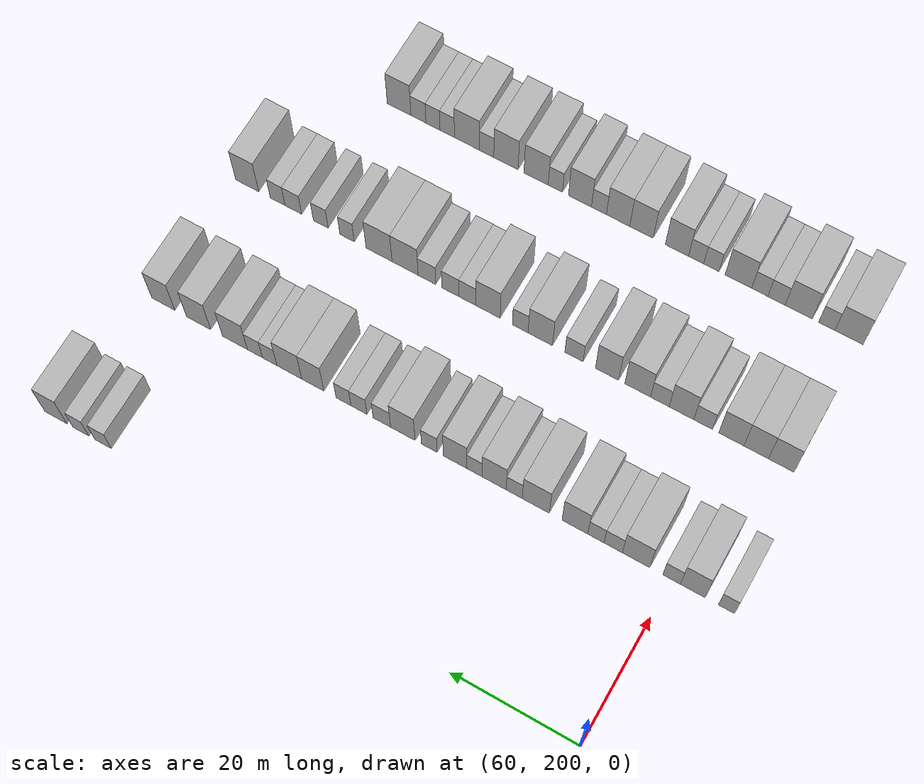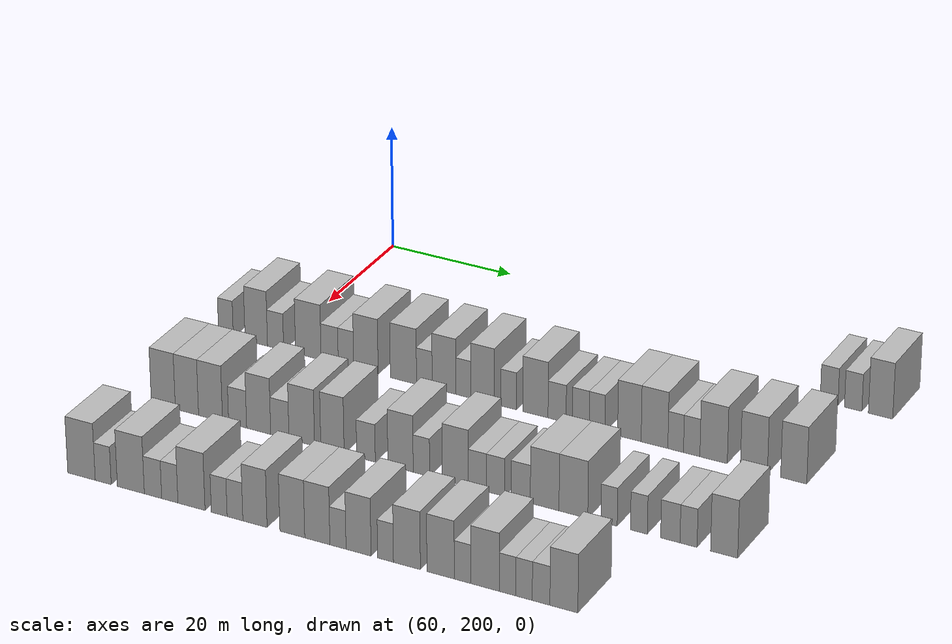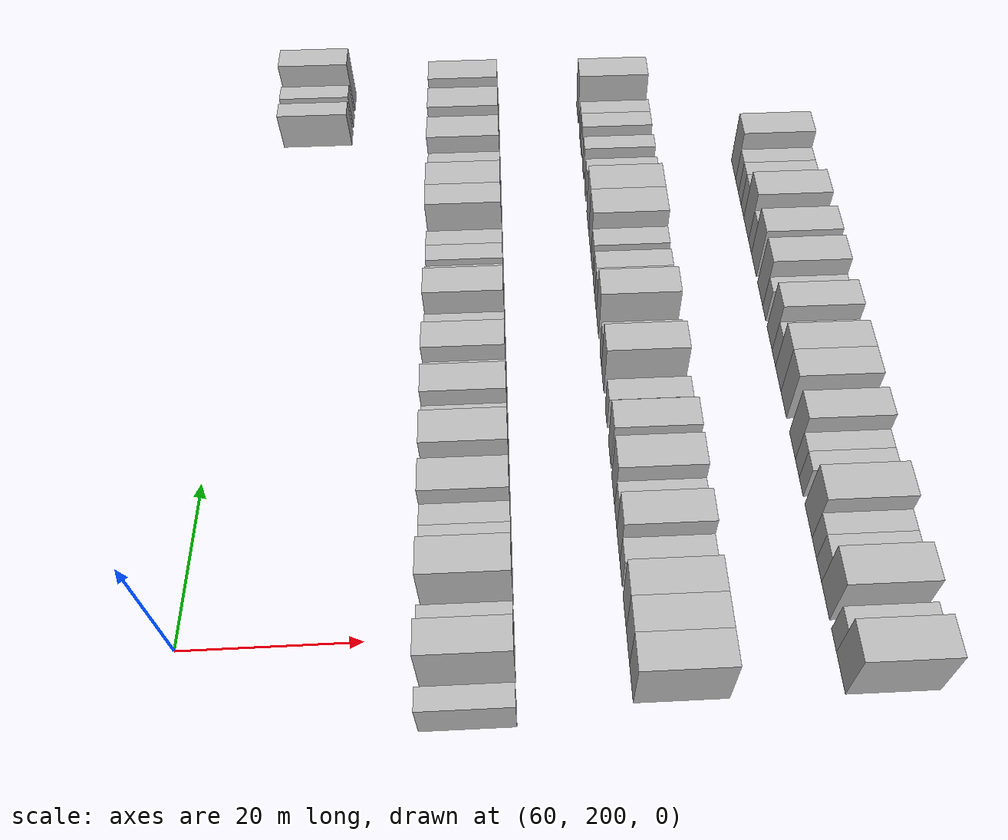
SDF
<sdf version="1.6">
 <world name="default">
  <model name="building_556">
   <static>1</static>
   <pose>69.0000 278.1105 0 0.000000 0.000000 0.000000</pose>
   <link name="link">
    <pose>0 0 3.00 0 0 0</pose>
    <collision name="collision"><geometry><box><size>10.0000 2.7563 6.0000</size></box></geometry></collision>
    <visual name="visual">
     <cast_shadows>0</cast_shadows>
     <geometry><box><size>10.0000 2.7563 6.0000</size></box></geometry>
     <material>
      <script>
       <uri>model://HANNAS_wall/materials/scripts</uri>
       <uri>model://HANNAS_wall/materials/textures</uri>
       <name>vrc/HANNAS_wall</name>
      </script>
     </material>
    </visual>
   </link>
  </model>
  <model name="building_557">
   <static>1</static>
   <pose>69.0000 281.8328 0 0.000000 0.000000 0.000000</pose>
   <link name="link">
    <pose>0 0 3.00 0 0 0</pose>
    <collision name="collision"><geometry><box><size>10.0000 2.6883 6.0000</size></box></geometry></collision>
    <visual name="visual">
     <cast_shadows>0</cast_shadows>
     <geometry><box><size>10.0000 2.6883 6.0000</size></box></geometry>
     <material>
      <script>
       <uri>model://HANNAS_wall/materials/scripts</uri>
       <uri>model://HANNAS_wall/materials/textures</uri>
       <name>vrc/HANNAS_wall</name>
      </script>
     </material>
    </visual>
   </link>
  </model>
  <model name="building_558">
   <static>1</static>
   <pose>69.0000 286.0413 0 0.000000 0.000000 0.000000</pose>
   <link name="link">
    <pose>0 0 4.50 0 0 0</pose>
    <collision name="collision"><geometry><box><size>10.0000 3.7287 9.0000</size></box></geometry></collision>
    <visual name="visual">
     <cast_shadows>0</cast_shadows>
     <geometry><box><size>10.0000 3.7287 9.0000</size></box></geometry>
     <material>
      <script>
       <uri>model://HANNAS_wall/materials/scripts</uri>
       <uri>model://HANNAS_wall/materials/textures</uri>
       <name>vrc/HANNAS_wall</name>
      </script>
     </material>
    </visual>
   </link>
  </model>
  <model name="building_726">
   <static>1</static>
   <pose>91.0000 191.6211 0 0.000000 0.000000 0.000000</pose>
   <link name="link">
    <pose>0 0 3.00 0 0 0</pose>
    <collision name="collision"><geometry><box><size>10.0000 2.4835 6.0000</size></box></geometry></collision>
    <visual name="visual">
     <cast_shadows>0</cast_shadows>
     <geometry><box><size>10.0000 2.4835 6.0000</size></box></geometry>
     <material>
      <script>
       <uri>model://HANNAS_wall/materials/scripts</uri>
       <uri>model://HANNAS_wall/materials/textures</uri>
       <name>vrc/HANNAS_wall</name>
      </script>
     </material>
    </visual>
   </link>
  </model>
  <model name="building_727">
   <static>1</static>
   <pose>91.0000 196.7497 0 0.000000 0.000000 0.000000</pose>
   <link name="link">
    <pose>0 0 4.50 0 0 0</pose>
    <collision name="collision"><geometry><box><size>10.0000 3.7738 9.0000</size></box></geometry></collision>
    <visual name="visual">
     <cast_shadows>0</cast_shadows>
     <geometry><box><size>10.0000 3.7738 9.0000</size></box></geometry>
     <material>
      <script>
       <uri>model://HANNAS_wall/materials/scripts</uri>
       <uri>model://HANNAS_wall/materials/textures</uri>
       <name>vrc/HANNAS_wall</name>
      </script>
     </material>
    </visual>
   </link>
  </model>
  <model name="building_728">
   <static>1</static>
   <pose>91.0000 199.9868 0 0.000000 0.000000 0.000000</pose>
   <link name="link">
    <pose>0 0 3.00 0 0 0</pose>
    <collision name="collision"><geometry><box><size>10.0000 2.7004 6.0000</size></box></geometry></collision>
    <visual name="visual">
     <cast_shadows>0</cast_shadows>
     <geometry><box><size>10.0000 2.7004 6.0000</size></box></geometry>
     <material>
      <script>
       <uri>model://HANNAS_wall/materials/scripts</uri>
       <uri>model://HANNAS_wall/materials/textures</uri>
       <name>vrc/HANNAS_wall</name>
      </script>
     </material>
    </visual>
   </link>
  </model>
  <model name="building_729">
   <static>1</static>
   <pose>91.0000 205.4619 0 0.000000 0.000000 0.000000</pose>
   <link name="link">
    <pose>0 0 4.50 0 0 0</pose>
    <collision name="collision"><geometry><box><size>10.0000 4.2499 9.0000</size></box></geometry></collision>
    <visual name="visual">
     <cast_shadows>0</cast_shadows>
     <geometry><box><size>10.0000 4.2499 9.0000</size></box></geometry>
     <material>
      <script>
       <uri>model://HANNAS_wall/materials/scripts</uri>
       <uri>model://HANNAS_wall/materials/textures</uri>
       <name>vrc/HANNAS_wall</name>
      </script>
     </material>
    </visual>
   </link>
  </model>
  <model name="building_730">
   <static>1</static>
   <pose>91.0000 209.0058 0 0.000000 0.000000 0.000000</pose>
   <link name="link">
    <pose>0 0 3.00 0 0 0</pose>
    <collision name="collision"><geometry><box><size>10.0000 2.8380 6.0000</size></box></geometry></collision>
    <visual name="visual">
     <cast_shadows>0</cast_shadows>
     <geometry><box><size>10.0000 2.8380 6.0000</size></box></geometry>
     <material>
      <script>
       <uri>model://HANNAS_wall/materials/scripts</uri>
       <uri>model://HANNAS_wall/materials/textures</uri>
       <name>vrc/HANNAS_wall</name>
      </script>
     </material>
    </visual>
   </link>
  </model>
  <model name="building_731">
   <static>1</static>
   <pose>91.0000 211.7029 0 0.000000 0.000000 0.000000</pose>
   <link name="link">
    <pose>0 0 3.00 0 0 0</pose>
    <collision name="collision"><geometry><box><size>10.0000 2.5561 6.0000</size></box></geometry></collision>
    <visual name="visual">
     <cast_shadows>0</cast_shadows>
     <geometry><box><size>10.0000 2.5561 6.0000</size></box></geometry>
     <material>
      <script>
       <uri>model://HANNAS_wall/materials/scripts</uri>
       <uri>model://HANNAS_wall/materials/textures</uri>
       <name>vrc/HANNAS_wall</name>
      </script>
     </material>
    </visual>
   </link>
  </model>
  <model name="building_732">
   <static>1</static>
   <pose>91.0000 214.9908 0 0.000000 0.000000 0.000000</pose>
   <link name="link">
    <pose>0 0 4.50 0 0 0</pose>
    <collision name="collision"><geometry><box><size>10.0000 4.0197 9.0000</size></box></geometry></collision>
    <visual name="visual">
     <cast_shadows>0</cast_shadows>
     <geometry><box><size>10.0000 4.0197 9.0000</size></box></geometry>
     <material>
      <script>
       <uri>model://HANNAS_wall/materials/scripts</uri>
       <uri>model://HANNAS_wall/materials/textures</uri>
       <name>vrc/HANNAS_wall</name>
      </script>
     </material>
    </visual>
   </link>
  </model>
  <model name="building_733">
   <static>1</static>
   <pose>91.0000 221.1386 0 0.000000 0.000000 0.000000</pose>
   <link name="link">
    <pose>0 0 4.50 0 0 0</pose>
    <collision name="collision"><geometry><box><size>10.0000 4.2759 9.0000</size></box></geometry></collision>
    <visual name="visual">
     <cast_shadows>0</cast_shadows>
     <geometry><box><size>10.0000 4.2759 9.0000</size></box></geometry>
     <material>
      <script>
       <uri>model://HANNAS_wall/materials/scripts</uri>
       <uri>model://HANNAS_wall/materials/textures</uri>
       <name>vrc/HANNAS_wall</name>
      </script>
     </material>
    </visual>
   </link>
  </model>
  <model name="building_734">
   <static>1</static>
   <pose>91.0000 224.5494 0 0.000000 0.000000 0.000000</pose>
   <link name="link">
    <pose>0 0 3.00 0 0 0</pose>
    <collision name="collision"><geometry><box><size>10.0000 2.5457 6.0000</size></box></geometry></collision>
    <visual name="visual">
     <cast_shadows>0</cast_shadows>
     <geometry><box><size>10.0000 2.5457 6.0000</size></box></geometry>
     <material>
      <script>
       <uri>model://HANNAS_wall/materials/scripts</uri>
       <uri>model://HANNAS_wall/materials/textures</uri>
       <name>vrc/HANNAS_wall</name>
      </script>
     </material>
    </visual>
   </link>
  </model>
  <model name="building_735">
   <static>1</static>
   <pose>91.0000 227.7348 0 0.000000 0.000000 0.000000</pose>
   <link name="link">
    <pose>0 0 4.50 0 0 0</pose>
    <collision name="collision"><geometry><box><size>10.0000 3.8252 9.0000</size></box></geometry></collision>
    <visual name="visual">
     <cast_shadows>0</cast_shadows>
     <geometry><box><size>10.0000 3.8252 9.0000</size></box></geometry>
     <material>
      <script>
       <uri>model://HANNAS_wall/materials/scripts</uri>
       <uri>model://HANNAS_wall/materials/textures</uri>
       <name>vrc/HANNAS_wall</name>
      </script>
     </material>
    </visual>
   </link>
  </model>
  <model name="building_736">
   <static>1</static>
   <pose>91.0000 230.8636 0 0.000000 0.000000 0.000000</pose>
   <link name="link">
    <pose>0 0 3.00 0 0 0</pose>
    <collision name="collision"><geometry><box><size>10.0000 2.4324 6.0000</size></box></geometry></collision>
    <visual name="visual">
     <cast_shadows>0</cast_shadows>
     <geometry><box><size>10.0000 2.4324 6.0000</size></box></geometry>
     <material>
      <script>
       <uri>model://HANNAS_wall/materials/scripts</uri>
       <uri>model://HANNAS_wall/materials/textures</uri>
       <name>vrc/HANNAS_wall</name>
      </script>
     </material>
    </visual>
   </link>
  </model>
  <model name="building_737">
   <static>1</static>
   <pose>91.0000 233.9702 0 0.000000 0.000000 0.000000</pose>
   <link name="link">
    <pose>0 0 4.50 0 0 0</pose>
    <collision name="collision"><geometry><box><size>10.0000 3.7809 9.0000</size></box></geometry></collision>
    <visual name="visual">
     <cast_shadows>0</cast_shadows>
     <geometry><box><size>10.0000 3.7809 9.0000</size></box></geometry>
     <material>
      <script>
       <uri>model://HANNAS_wall/materials/scripts</uri>
       <uri>model://HANNAS_wall/materials/textures</uri>
       <name>vrc/HANNAS_wall</name>
      </script>
     </material>
    </visual>
   </link>
  </model>
  <model name="building_738">
   <static>1</static>
   <pose>91.0000 238.1297 0 0.000000 0.000000 0.000000</pose>
   <link name="link">
    <pose>0 0 3.00 0 0 0</pose>
    <collision name="collision"><geometry><box><size>10.0000 2.5380 6.0000</size></box></geometry></collision>
    <visual name="visual">
     <cast_shadows>0</cast_shadows>
     <geometry><box><size>10.0000 2.5380 6.0000</size></box></geometry>
     <material>
      <script>
       <uri>model://HANNAS_wall/materials/scripts</uri>
       <uri>model://HANNAS_wall/materials/textures</uri>
       <name>vrc/HANNAS_wall</name>
      </script>
     </material>
    </visual>
   </link>
  </model>
  <model name="building_739">
   <static>1</static>
   <pose>91.0000 242.3924 0 0.000000 0.000000 0.000000</pose>
   <link name="link">
    <pose>0 0 4.50 0 0 0</pose>
    <collision name="collision"><geometry><box><size>10.0000 3.9873 9.0000</size></box></geometry></collision>
    <visual name="visual">
     <cast_shadows>0</cast_shadows>
     <geometry><box><size>10.0000 3.9873 9.0000</size></box></geometry>
     <material>
      <script>
       <uri>model://HANNAS_wall/materials/scripts</uri>
       <uri>model://HANNAS_wall/materials/textures</uri>
       <name>vrc/HANNAS_wall</name>
      </script>
     </material>
    </visual>
   </link>
  </model>
  <model name="building_740">
   <static>1</static>
   <pose>91.0000 245.8175 0 0.000000 0.000000 0.000000</pose>
   <link name="link">
    <pose>0 0 3.00 0 0 0</pose>
    <collision name="collision"><geometry><box><size>10.0000 2.8629 6.0000</size></box></geometry></collision>
    <visual name="visual">
     <cast_shadows>0</cast_shadows>
     <geometry><box><size>10.0000 2.8629 6.0000</size></box></geometry>
     <material>
      <script>
       <uri>model://HANNAS_wall/materials/scripts</uri>
       <uri>model://HANNAS_wall/materials/textures</uri>
       <name>vrc/HANNAS_wall</name>
      </script>
     </material>
    </visual>
   </link>
  </model>
  <model name="building_741">
   <static>1</static>
   <pose>91.0000 249.5633 0 0.000000 0.000000 0.000000</pose>
   <link name="link">
    <pose>0 0 3.00 0 0 0</pose>
    <collision name="collision"><geometry><box><size>10.0000 2.6288 6.0000</size></box></geometry></collision>
    <visual name="visual">
     <cast_shadows>0</cast_shadows>
     <geometry><box><size>10.0000 2.6288 6.0000</size></box></geometry>
     <material>
      <script>
       <uri>model://HANNAS_wall/materials/scripts</uri>
       <uri>model://HANNAS_wall/materials/textures</uri>
       <name>vrc/HANNAS_wall</name>
      </script>
     </material>
    </visual>
   </link>
  </model>
  <model name="building_742">
   <static>1</static>
   <pose>91.0000 252.1023 0 0.000000 0.000000 0.000000</pose>
   <link name="link">
    <pose>0 0 3.00 0 0 0</pose>
    <collision name="collision"><geometry><box><size>10.0000 2.4491 6.0000</size></box></geometry></collision>
    <visual name="visual">
     <cast_shadows>0</cast_shadows>
     <geometry><box><size>10.0000 2.4491 6.0000</size></box></geometry>
     <material>
      <script>
       <uri>model://HANNAS_wall/materials/scripts</uri>
       <uri>model://HANNAS_wall/materials/textures</uri>
       <name>vrc/HANNAS_wall</name>
      </script>
     </material>
    </visual>
   </link>
  </model>
  <model name="building_743">
   <static>1</static>
   <pose>91.0000 257.1575 0 0.000000 0.000000 0.000000</pose>
   <link name="link">
    <pose>0 0 4.50 0 0 0</pose>
    <collision name="collision"><geometry><box><size>10.0000 3.6613 9.0000</size></box></geometry></collision>
    <visual name="visual">
     <cast_shadows>0</cast_shadows>
     <geometry><box><size>10.0000 3.6613 9.0000</size></box></geometry>
     <material>
      <script>
       <uri>model://HANNAS_wall/materials/scripts</uri>
       <uri>model://HANNAS_wall/materials/textures</uri>
       <name>vrc/HANNAS_wall</name>
      </script>
     </material>
    </visual>
   </link>
  </model>
  <model name="building_744">
   <static>1</static>
   <pose>91.0000 261.0592 0 0.000000 0.000000 0.000000</pose>
   <link name="link">
    <pose>0 0 4.50 0 0 0</pose>
    <collision name="collision"><geometry><box><size>10.0000 4.1419 9.0000</size></box></geometry></collision>
    <visual name="visual">
     <cast_shadows>0</cast_shadows>
     <geometry><box><size>10.0000 4.1419 9.0000</size></box></geometry>
     <material>
      <script>
       <uri>model://HANNAS_wall/materials/scripts</uri>
       <uri>model://HANNAS_wall/materials/textures</uri>
       <name>vrc/HANNAS_wall</name>
      </script>
     </material>
    </visual>
   </link>
  </model>
  <model name="building_745">
   <static>1</static>
   <pose>91.0000 264.3367 0 0.000000 0.000000 0.000000</pose>
   <link name="link">
    <pose>0 0 3.00 0 0 0</pose>
    <collision name="collision"><geometry><box><size>10.0000 2.4132 6.0000</size></box></geometry></collision>
    <visual name="visual">
     <cast_shadows>0</cast_shadows>
     <geometry><box><size>10.0000 2.4132 6.0000</size></box></geometry>
     <material>
      <script>
       <uri>model://HANNAS_wall/materials/scripts</uri>
       <uri>model://HANNAS_wall/materials/textures</uri>
       <name>vrc/HANNAS_wall</name>
      </script>
     </material>
    </visual>
   </link>
  </model>
  <model name="building_746">
   <static>1</static>
   <pose>91.0000 266.8033 0 0.000000 0.000000 0.000000</pose>
   <link name="link">
    <pose>0 0 3.00 0 0 0</pose>
    <collision name="collision"><geometry><box><size>10.0000 2.5198 6.0000</size></box></geometry></collision>
    <visual name="visual">
     <cast_shadows>0</cast_shadows>
     <geometry><box><size>10.0000 2.5198 6.0000</size></box></geometry>
     <material>
      <script>
       <uri>model://HANNAS_wall/materials/scripts</uri>
       <uri>model://HANNAS_wall/materials/textures</uri>
       <name>vrc/HANNAS_wall</name>
      </script>
     </material>
    </visual>
   </link>
  </model>
  <model name="building_747">
   <static>1</static>
   <pose>91.0000 270.1615 0 0.000000 0.000000 0.000000</pose>
   <link name="link">
    <pose>0 0 4.50 0 0 0</pose>
    <collision name="collision"><geometry><box><size>10.0000 4.1966 9.0000</size></box></geometry></collision>
    <visual name="visual">
     <cast_shadows>0</cast_shadows>
     <geometry><box><size>10.0000 4.1966 9.0000</size></box></geometry>
     <material>
      <script>
       <uri>model://HANNAS_wall/materials/scripts</uri>
       <uri>model://HANNAS_wall/materials/textures</uri>
       <name>vrc/HANNAS_wall</name>
      </script>
     </material>
    </visual>
   </link>
  </model>
  <model name="building_748">
   <static>1</static>
   <pose>91.0000 276.3122 0 0.000000 0.000000 0.000000</pose>
   <link name="link">
    <pose>0 0 4.50 0 0 0</pose>
    <collision name="collision"><geometry><box><size>10.0000 4.1048 9.0000</size></box></geometry></collision>
    <visual name="visual">
     <cast_shadows>0</cast_shadows>
     <geometry><box><size>10.0000 4.1048 9.0000</size></box></geometry>
     <material>
      <script>
       <uri>model://HANNAS_wall/materials/scripts</uri>
       <uri>model://HANNAS_wall/materials/textures</uri>
       <name>vrc/HANNAS_wall</name>
      </script>
     </material>
    </visual>
   </link>
  </model>
  <model name="building_749">
   <static>1</static>
   <pose>91.0000 282.3330 0 0.000000 0.000000 0.000000</pose>
   <link name="link">
    <pose>0 0 4.50 0 0 0</pose>
    <collision name="collision"><geometry><box><size>10.0000 3.9367 9.0000</size></box></geometry></collision>
    <visual name="visual">
     <cast_shadows>0</cast_shadows>
     <geometry><box><size>10.0000 3.9367 9.0000</size></box></geometry>
     <material>
      <script>
       <uri>model://HANNAS_wall/materials/scripts</uri>
       <uri>model://HANNAS_wall/materials/textures</uri>
       <name>vrc/HANNAS_wall</name>
      </script>
     </material>
    </visual>
   </link>
  </model>
  <model name="building_906">
   <static>1</static>
   <pose>113.0000 194.2196 0 0.000000 0.000000 0.000000</pose>
   <link name="link">
    <pose>0 0 4.50 0 0 0</pose>
    <collision name="collision"><geometry><box><size>10.0000 3.9719 9.0000</size></box></geometry></collision>
    <visual name="visual">
     <cast_shadows>0</cast_shadows>
     <geometry><box><size>10.0000 3.9719 9.0000</size></box></geometry>
     <material>
      <script>
       <uri>model://HANNAS_wall/materials/scripts</uri>
       <uri>model://HANNAS_wall/materials/textures</uri>
       <name>vrc/HANNAS_wall</name>
      </script>
     </material>
    </visual>
   </link>
  </model>
  <model name="building_907">
   <static>1</static>
   <pose>113.0000 198.1195 0 0.000000 0.000000 0.000000</pose>
   <link name="link">
    <pose>0 0 4.50 0 0 0</pose>
    <collision name="collision"><geometry><box><size>10.0000 3.8280 9.0000</size></box></geometry></collision>
    <visual name="visual">
     <cast_shadows>0</cast_shadows>
     <geometry><box><size>10.0000 3.8280 9.0000</size></box></geometry>
     <material>
      <script>
       <uri>model://HANNAS_wall/materials/scripts</uri>
       <uri>model://HANNAS_wall/materials/textures</uri>
       <name>vrc/HANNAS_wall</name>
      </script>
     </material>
    </visual>
   </link>
  </model>
  <model name="building_908">
   <static>1</static>
   <pose>113.0000 201.9998 0 0.000000 0.000000 0.000000</pose>
   <link name="link">
    <pose>0 0 4.50 0 0 0</pose>
    <collision name="collision"><geometry><box><size>10.0000 3.9327 9.0000</size></box></geometry></collision>
    <visual name="visual">
     <cast_shadows>0</cast_shadows>
     <geometry><box><size>10.0000 3.9327 9.0000</size></box></geometry>
     <material>
      <script>
       <uri>model://HANNAS_wall/materials/scripts</uri>
       <uri>model://HANNAS_wall/materials/textures</uri>
       <name>vrc/HANNAS_wall</name>
      </script>
     </material>
    </visual>
   </link>
  </model>
  <model name="building_909">
   <static>1</static>
   <pose>113.0000 206.4337 0 0.000000 0.000000 0.000000</pose>
   <link name="link">
    <pose>0 0 3.00 0 0 0</pose>
    <collision name="collision"><geometry><box><size>10.0000 2.9350 6.0000</size></box></geometry></collision>
    <visual name="visual">
     <cast_shadows>0</cast_shadows>
     <geometry><box><size>10.0000 2.9350 6.0000</size></box></geometry>
     <material>
      <script>
       <uri>model://HANNAS_wall/materials/scripts</uri>
       <uri>model://HANNAS_wall/materials/textures</uri>
       <name>vrc/HANNAS_wall</name>
      </script>
     </material>
    </visual>
   </link>
  </model>
  <model name="building_910">
   <static>1</static>
   <pose>113.0000 209.8559 0 0.000000 0.000000 0.000000</pose>
   <link name="link">
    <pose>0 0 4.50 0 0 0</pose>
    <collision name="collision"><geometry><box><size>10.0000 3.9094 9.0000</size></box></geometry></collision>
    <visual name="visual">
     <cast_shadows>0</cast_shadows>
     <geometry><box><size>10.0000 3.9094 9.0000</size></box></geometry>
     <material>
      <script>
       <uri>model://HANNAS_wall/materials/scripts</uri>
       <uri>model://HANNAS_wall/materials/textures</uri>
       <name>vrc/HANNAS_wall</name>
      </script>
     </material>
    </visual>
   </link>
  </model>
  <model name="building_911">
   <static>1</static>
   <pose>113.0000 213.2878 0 0.000000 0.000000 0.000000</pose>
   <link name="link">
    <pose>0 0 3.00 0 0 0</pose>
    <collision name="collision"><geometry><box><size>10.0000 2.9544 6.0000</size></box></geometry></collision>
    <visual name="visual">
     <cast_shadows>0</cast_shadows>
     <geometry><box><size>10.0000 2.9544 6.0000</size></box></geometry>
     <material>
      <script>
       <uri>model://HANNAS_wall/materials/scripts</uri>
       <uri>model://HANNAS_wall/materials/textures</uri>
       <name>vrc/HANNAS_wall</name>
      </script>
     </material>
    </visual>
   </link>
  </model>
  <model name="building_912">
   <static>1</static>
   <pose>113.0000 216.8229 0 0.000000 0.000000 0.000000</pose>
   <link name="link">
    <pose>0 0 4.50 0 0 0</pose>
    <collision name="collision"><geometry><box><size>10.0000 4.1158 9.0000</size></box></geometry></collision>
    <visual name="visual">
     <cast_shadows>0</cast_shadows>
     <geometry><box><size>10.0000 4.1158 9.0000</size></box></geometry>
     <material>
      <script>
       <uri>model://HANNAS_wall/materials/scripts</uri>
       <uri>model://HANNAS_wall/materials/textures</uri>
       <name>vrc/HANNAS_wall</name>
      </script>
     </material>
    </visual>
   </link>
  </model>
  <model name="building_913">
   <static>1</static>
   <pose>113.0000 221.7449 0 0.000000 0.000000 0.000000</pose>
   <link name="link">
    <pose>0 0 4.50 0 0 0</pose>
    <collision name="collision"><geometry><box><size>10.0000 3.7284 9.0000</size></box></geometry></collision>
    <visual name="visual">
     <cast_shadows>0</cast_shadows>
     <geometry><box><size>10.0000 3.7284 9.0000</size></box></geometry>
     <material>
      <script>
       <uri>model://HANNAS_wall/materials/scripts</uri>
       <uri>model://HANNAS_wall/materials/textures</uri>
       <name>vrc/HANNAS_wall</name>
      </script>
     </material>
    </visual>
   </link>
  </model>
  <model name="building_914">
   <static>1</static>
   <pose>113.0000 227.0859 0 0.000000 0.000000 0.000000</pose>
   <link name="link">
    <pose>0 0 3.00 0 0 0</pose>
    <collision name="collision"><geometry><box><size>10.0000 2.9536 6.0000</size></box></geometry></collision>
    <visual name="visual">
     <cast_shadows>0</cast_shadows>
     <geometry><box><size>10.0000 2.9536 6.0000</size></box></geometry>
     <material>
      <script>
       <uri>model://HANNAS_wall/materials/scripts</uri>
       <uri>model://HANNAS_wall/materials/textures</uri>
       <name>vrc/HANNAS_wall</name>
      </script>
     </material>
    </visual>
   </link>
  </model>
  <model name="building_915">
   <static>1</static>
   <pose>113.0000 232.5534 0 0.000000 0.000000 0.000000</pose>
   <link name="link">
    <pose>0 0 4.50 0 0 0</pose>
    <collision name="collision"><geometry><box><size>10.0000 3.9813 9.0000</size></box></geometry></collision>
    <visual name="visual">
     <cast_shadows>0</cast_shadows>
     <geometry><box><size>10.0000 3.9813 9.0000</size></box></geometry>
     <material>
      <script>
       <uri>model://HANNAS_wall/materials/scripts</uri>
       <uri>model://HANNAS_wall/materials/textures</uri>
       <name>vrc/HANNAS_wall</name>
      </script>
     </material>
    </visual>
   </link>
  </model>
  <model name="building_916">
   <static>1</static>
   <pose>113.0000 235.8314 0 0.000000 0.000000 0.000000</pose>
   <link name="link">
    <pose>0 0 3.00 0 0 0</pose>
    <collision name="collision"><geometry><box><size>10.0000 2.5748 6.0000</size></box></geometry></collision>
    <visual name="visual">
     <cast_shadows>0</cast_shadows>
     <geometry><box><size>10.0000 2.5748 6.0000</size></box></geometry>
     <material>
      <script>
       <uri>model://HANNAS_wall/materials/scripts</uri>
       <uri>model://HANNAS_wall/materials/textures</uri>
       <name>vrc/HANNAS_wall</name>
      </script>
     </material>
    </visual>
   </link>
  </model>
  <model name="building_917">
   <static>1</static>
   <pose>113.0000 241.1349 0 0.000000 0.000000 0.000000</pose>
   <link name="link">
    <pose>0 0 4.50 0 0 0</pose>
    <collision name="collision"><geometry><box><size>10.0000 4.0322 9.0000</size></box></geometry></collision>
    <visual name="visual">
     <cast_shadows>0</cast_shadows>
     <geometry><box><size>10.0000 4.0322 9.0000</size></box></geometry>
     <material>
      <script>
       <uri>model://HANNAS_wall/materials/scripts</uri>
       <uri>model://HANNAS_wall/materials/textures</uri>
       <name>vrc/HANNAS_wall</name>
      </script>
     </material>
    </visual>
   </link>
  </model>
  <model name="building_918">
   <static>1</static>
   <pose>113.0000 244.5380 0 0.000000 0.000000 0.000000</pose>
   <link name="link">
    <pose>0 0 3.00 0 0 0</pose>
    <collision name="collision"><geometry><box><size>10.0000 2.7740 6.0000</size></box></geometry></collision>
    <visual name="visual">
     <cast_shadows>0</cast_shadows>
     <geometry><box><size>10.0000 2.7740 6.0000</size></box></geometry>
     <material>
      <script>
       <uri>model://HANNAS_wall/materials/scripts</uri>
       <uri>model://HANNAS_wall/materials/textures</uri>
       <name>vrc/HANNAS_wall</name>
      </script>
     </material>
    </visual>
   </link>
  </model>
  <model name="building_919">
   <static>1</static>
   <pose>113.0000 247.3493 0 0.000000 0.000000 0.000000</pose>
   <link name="link">
    <pose>0 0 3.00 0 0 0</pose>
    <collision name="collision"><geometry><box><size>10.0000 2.8487 6.0000</size></box></geometry></collision>
    <visual name="visual">
     <cast_shadows>0</cast_shadows>
     <geometry><box><size>10.0000 2.8487 6.0000</size></box></geometry>
     <material>
      <script>
       <uri>model://HANNAS_wall/materials/scripts</uri>
       <uri>model://HANNAS_wall/materials/textures</uri>
       <name>vrc/HANNAS_wall</name>
      </script>
     </material>
    </visual>
   </link>
  </model>
  <model name="building_920">
   <static>1</static>
   <pose>113.0000 251.2538 0 0.000000 0.000000 0.000000</pose>
   <link name="link">
    <pose>0 0 3.00 0 0 0</pose>
    <collision name="collision"><geometry><box><size>10.0000 2.9604 6.0000</size></box></geometry></collision>
    <visual name="visual">
     <cast_shadows>0</cast_shadows>
     <geometry><box><size>10.0000 2.9604 6.0000</size></box></geometry>
     <material>
      <script>
       <uri>model://HANNAS_wall/materials/scripts</uri>
       <uri>model://HANNAS_wall/materials/textures</uri>
       <name>vrc/HANNAS_wall</name>
      </script>
     </material>
    </visual>
   </link>
  </model>
  <model name="building_921">
   <static>1</static>
   <pose>113.0000 254.9255 0 0.000000 0.000000 0.000000</pose>
   <link name="link">
    <pose>0 0 4.50 0 0 0</pose>
    <collision name="collision"><geometry><box><size>10.0000 4.3829 9.0000</size></box></geometry></collision>
    <visual name="visual">
     <cast_shadows>0</cast_shadows>
     <geometry><box><size>10.0000 4.3829 9.0000</size></box></geometry>
     <material>
      <script>
       <uri>model://HANNAS_wall/materials/scripts</uri>
       <uri>model://HANNAS_wall/materials/textures</uri>
       <name>vrc/HANNAS_wall</name>
      </script>
     </material>
    </visual>
   </link>
  </model>
  <model name="building_922">
   <static>1</static>
   <pose>113.0000 259.3019 0 0.000000 0.000000 0.000000</pose>
   <link name="link">
    <pose>0 0 4.50 0 0 0</pose>
    <collision name="collision"><geometry><box><size>10.0000 4.3700 9.0000</size></box></geometry></collision>
    <visual name="visual">
     <cast_shadows>0</cast_shadows>
     <geometry><box><size>10.0000 4.3700 9.0000</size></box></geometry>
     <material>
      <script>
       <uri>model://HANNAS_wall/materials/scripts</uri>
       <uri>model://HANNAS_wall/materials/textures</uri>
       <name>vrc/HANNAS_wall</name>
      </script>
     </material>
    </visual>
   </link>
  </model>
  <model name="building_923">
   <static>1</static>
   <pose>113.0000 264.7086 0 0.000000 0.000000 0.000000</pose>
   <link name="link">
    <pose>0 0 3.00 0 0 0</pose>
    <collision name="collision"><geometry><box><size>10.0000 2.4435 6.0000</size></box></geometry></collision>
    <visual name="visual">
     <cast_shadows>0</cast_shadows>
     <geometry><box><size>10.0000 2.4435 6.0000</size></box></geometry>
     <material>
      <script>
       <uri>model://HANNAS_wall/materials/scripts</uri>
       <uri>model://HANNAS_wall/materials/textures</uri>
       <name>vrc/HANNAS_wall</name>
      </script>
     </material>
    </visual>
   </link>
  </model>
  <model name="building_924">
   <static>1</static>
   <pose>113.0000 269.1933 0 0.000000 0.000000 0.000000</pose>
   <link name="link">
    <pose>0 0 3.00 0 0 0</pose>
    <collision name="collision"><geometry><box><size>10.0000 2.5259 6.0000</size></box></geometry></collision>
    <visual name="visual">
     <cast_shadows>0</cast_shadows>
     <geometry><box><size>10.0000 2.5259 6.0000</size></box></geometry>
     <material>
      <script>
       <uri>model://HANNAS_wall/materials/scripts</uri>
       <uri>model://HANNAS_wall/materials/textures</uri>
       <name>vrc/HANNAS_wall</name>
      </script>
     </material>
    </visual>
   </link>
  </model>
  <model name="building_925">
   <static>1</static>
   <pose>113.0000 273.8963 0 0.000000 0.000000 0.000000</pose>
   <link name="link">
    <pose>0 0 3.00 0 0 0</pose>
    <collision name="collision"><geometry><box><size>10.0000 2.8800 6.0000</size></box></geometry></collision>
    <visual name="visual">
     <cast_shadows>0</cast_shadows>
     <geometry><box><size>10.0000 2.8800 6.0000</size></box></geometry>
     <material>
      <script>
       <uri>model://HANNAS_wall/materials/scripts</uri>
       <uri>model://HANNAS_wall/materials/textures</uri>
       <name>vrc/HANNAS_wall</name>
      </script>
     </material>
    </visual>
   </link>
  </model>
  <model name="building_926">
   <static>1</static>
   <pose>113.0000 276.6024 0 0.000000 0.000000 0.000000</pose>
   <link name="link">
    <pose>0 0 3.00 0 0 0</pose>
    <collision name="collision"><geometry><box><size>10.0000 2.5322 6.0000</size></box></geometry></collision>
    <visual name="visual">
     <cast_shadows>0</cast_shadows>
     <geometry><box><size>10.0000 2.5322 6.0000</size></box></geometry>
     <material>
      <script>
       <uri>model://HANNAS_wall/materials/scripts</uri>
       <uri>model://HANNAS_wall/materials/textures</uri>
       <name>vrc/HANNAS_wall</name>
      </script>
     </material>
    </visual>
   </link>
  </model>
  <model name="building_927">
   <static>1</static>
   <pose>113.0000 281.8707 0 0.000000 0.000000 0.000000</pose>
   <link name="link">
    <pose>0 0 4.50 0 0 0</pose>
    <collision name="collision"><geometry><box><size>10.0000 4.0045 9.0000</size></box></geometry></collision>
    <visual name="visual">
     <cast_shadows>0</cast_shadows>
     <geometry><box><size>10.0000 4.0045 9.0000</size></box></geometry>
     <material>
      <script>
       <uri>model://HANNAS_wall/materials/scripts</uri>
       <uri>model://HANNAS_wall/materials/textures</uri>
       <name>vrc/HANNAS_wall</name>
      </script>
     </material>
    </visual>
   </link>
  </model>
  <model name="building_1101">
   <static>1</static>
   <pose>135.0000 194.3129 0 0.000000 0.000000 0.000000</pose>
   <link name="link">
    <pose>0 0 4.50 0 0 0</pose>
    <collision name="collision"><geometry><box><size>10.0000 4.4567 9.0000</size></box></geometry></collision>
    <visual name="visual">
     <cast_shadows>0</cast_shadows>
     <geometry><box><size>10.0000 4.4567 9.0000</size></box></geometry>
     <material>
      <script>
       <uri>model://HANNAS_wall/materials/scripts</uri>
       <uri>model://HANNAS_wall/materials/textures</uri>
       <name>vrc/HANNAS_wall</name>
      </script>
     </material>
    </visual>
   </link>
  </model>
  <model name="building_1102">
   <static>1</static>
   <pose>135.0000 197.8305 0 0.000000 0.000000 0.000000</pose>
   <link name="link">
    <pose>0 0 3.00 0 0 0</pose>
    <collision name="collision"><geometry><box><size>10.0000 2.5786 6.0000</size></box></geometry></collision>
    <visual name="visual">
     <cast_shadows>0</cast_shadows>
     <geometry><box><size>10.0000 2.5786 6.0000</size></box></geometry>
     <material>
      <script>
       <uri>model://HANNAS_wall/materials/scripts</uri>
       <uri>model://HANNAS_wall/materials/textures</uri>
       <name>vrc/HANNAS_wall</name>
      </script>
     </material>
    </visual>
   </link>
  </model>
  <model name="building_1103">
   <static>1</static>
   <pose>135.0000 202.2874 0 0.000000 0.000000 0.000000</pose>
   <link name="link">
    <pose>0 0 4.50 0 0 0</pose>
    <collision name="collision"><geometry><box><size>10.0000 4.3351 9.0000</size></box></geometry></collision>
    <visual name="visual">
     <cast_shadows>0</cast_shadows>
     <geometry><box><size>10.0000 4.3351 9.0000</size></box></geometry>
     <material>
      <script>
       <uri>model://HANNAS_wall/materials/scripts</uri>
       <uri>model://HANNAS_wall/materials/textures</uri>
       <name>vrc/HANNAS_wall</name>
      </script>
     </material>
    </visual>
   </link>
  </model>
  <model name="building_1104">
   <static>1</static>
   <pose>135.0000 205.8444 0 0.000000 0.000000 0.000000</pose>
   <link name="link">
    <pose>0 0 3.00 0 0 0</pose>
    <collision name="collision"><geometry><box><size>10.0000 2.7788 6.0000</size></box></geometry></collision>
    <visual name="visual">
     <cast_shadows>0</cast_shadows>
     <geometry><box><size>10.0000 2.7788 6.0000</size></box></geometry>
     <material>
      <script>
       <uri>model://HANNAS_wall/materials/scripts</uri>
       <uri>model://HANNAS_wall/materials/textures</uri>
       <name>vrc/HANNAS_wall</name>
      </script>
     </material>
    </visual>
   </link>
  </model>
  <model name="building_1105">
   <static>1</static>
   <pose>135.0000 208.5275 0 0.000000 0.000000 0.000000</pose>
   <link name="link">
    <pose>0 0 3.00 0 0 0</pose>
    <collision name="collision"><geometry><box><size>10.0000 2.5874 6.0000</size></box></geometry></collision>
    <visual name="visual">
     <cast_shadows>0</cast_shadows>
     <geometry><box><size>10.0000 2.5874 6.0000</size></box></geometry>
     <material>
      <script>
       <uri>model://HANNAS_wall/materials/scripts</uri>
       <uri>model://HANNAS_wall/materials/textures</uri>
       <name>vrc/HANNAS_wall</name>
      </script>
     </material>
    </visual>
   </link>
  </model>
  <model name="building_1106">
   <static>1</static>
   <pose>135.0000 211.9713 0 0.000000 0.000000 0.000000</pose>
   <link name="link">
    <pose>0 0 4.50 0 0 0</pose>
    <collision name="collision"><geometry><box><size>10.0000 4.3002 9.0000</size></box></geometry></collision>
    <visual name="visual">
     <cast_shadows>0</cast_shadows>
     <geometry><box><size>10.0000 4.3002 9.0000</size></box></geometry>
     <material>
      <script>
       <uri>model://HANNAS_wall/materials/scripts</uri>
       <uri>model://HANNAS_wall/materials/textures</uri>
       <name>vrc/HANNAS_wall</name>
      </script>
     </material>
    </visual>
   </link>
  </model>
  <model name="building_1107">
   <static>1</static>
   <pose>135.0000 216.3658 0 0.000000 0.000000 0.000000</pose>
   <link name="link">
    <pose>0 0 3.00 0 0 0</pose>
    <collision name="collision"><geometry><box><size>10.0000 2.4887 6.0000</size></box></geometry></collision>
    <visual name="visual">
     <cast_shadows>0</cast_shadows>
     <geometry><box><size>10.0000 2.4887 6.0000</size></box></geometry>
     <material>
      <script>
       <uri>model://HANNAS_wall/materials/scripts</uri>
       <uri>model://HANNAS_wall/materials/textures</uri>
       <name>vrc/HANNAS_wall</name>
      </script>
     </material>
    </visual>
   </link>
  </model>
  <model name="building_1108">
   <static>1</static>
   <pose>135.0000 218.8489 0 0.000000 0.000000 0.000000</pose>
   <link name="link">
    <pose>0 0 3.00 0 0 0</pose>
    <collision name="collision"><geometry><box><size>10.0000 2.4776 6.0000</size></box></geometry></collision>
    <visual name="visual">
     <cast_shadows>0</cast_shadows>
     <geometry><box><size>10.0000 2.4776 6.0000</size></box></geometry>
     <material>
      <script>
       <uri>model://HANNAS_wall/materials/scripts</uri>
       <uri>model://HANNAS_wall/materials/textures</uri>
       <name>vrc/HANNAS_wall</name>
      </script>
     </material>
    </visual>
   </link>
  </model>
  <model name="building_1109">
   <static>1</static>
   <pose>135.0000 221.9840 0 0.000000 0.000000 0.000000</pose>
   <link name="link">
    <pose>0 0 4.50 0 0 0</pose>
    <collision name="collision"><geometry><box><size>10.0000 3.7927 9.0000</size></box></geometry></collision>
    <visual name="visual">
     <cast_shadows>0</cast_shadows>
     <geometry><box><size>10.0000 3.7927 9.0000</size></box></geometry>
     <material>
      <script>
       <uri>model://HANNAS_wall/materials/scripts</uri>
       <uri>model://HANNAS_wall/materials/textures</uri>
       <name>vrc/HANNAS_wall</name>
      </script>
     </material>
    </visual>
   </link>
  </model>
  <model name="building_1110">
   <static>1</static>
   <pose>135.0000 227.8119 0 0.000000 0.000000 0.000000</pose>
   <link name="link">
    <pose>0 0 4.50 0 0 0</pose>
    <collision name="collision"><geometry><box><size>10.0000 3.8631 9.0000</size></box></geometry></collision>
    <visual name="visual">
     <cast_shadows>0</cast_shadows>
     <geometry><box><size>10.0000 3.8631 9.0000</size></box></geometry>
     <material>
      <script>
       <uri>model://HANNAS_wall/materials/scripts</uri>
       <uri>model://HANNAS_wall/materials/textures</uri>
       <name>vrc/HANNAS_wall</name>
      </script>
     </material>
    </visual>
   </link>
  </model>
  <model name="building_1111">
   <static>1</static>
   <pose>135.0000 231.6845 0 0.000000 0.000000 0.000000</pose>
   <link name="link">
    <pose>0 0 4.50 0 0 0</pose>
    <collision name="collision"><geometry><box><size>10.0000 3.8821 9.0000</size></box></geometry></collision>
    <visual name="visual">
     <cast_shadows>0</cast_shadows>
     <geometry><box><size>10.0000 3.8821 9.0000</size></box></geometry>
     <material>
      <script>
       <uri>model://HANNAS_wall/materials/scripts</uri>
       <uri>model://HANNAS_wall/materials/textures</uri>
       <name>vrc/HANNAS_wall</name>
      </script>
     </material>
    </visual>
   </link>
  </model>
  <model name="building_1112">
   <static>1</static>
   <pose>135.0000 234.8669 0 0.000000 0.000000 0.000000</pose>
   <link name="link">
    <pose>0 0 3.00 0 0 0</pose>
    <collision name="collision"><geometry><box><size>10.0000 2.4828 6.0000</size></box></geometry></collision>
    <visual name="visual">
     <cast_shadows>0</cast_shadows>
     <geometry><box><size>10.0000 2.4828 6.0000</size></box></geometry>
     <material>
      <script>
       <uri>model://HANNAS_wall/materials/scripts</uri>
       <uri>model://HANNAS_wall/materials/textures</uri>
       <name>vrc/HANNAS_wall</name>
      </script>
     </material>
    </visual>
   </link>
  </model>
  <model name="building_1113">
   <static>1</static>
   <pose>135.0000 238.0276 0 0.000000 0.000000 0.000000</pose>
   <link name="link">
    <pose>0 0 4.50 0 0 0</pose>
    <collision name="collision"><geometry><box><size>10.0000 3.8384 9.0000</size></box></geometry></collision>
    <visual name="visual">
     <cast_shadows>0</cast_shadows>
     <geometry><box><size>10.0000 3.8384 9.0000</size></box></geometry>
     <material>
      <script>
       <uri>model://HANNAS_wall/materials/scripts</uri>
       <uri>model://HANNAS_wall/materials/textures</uri>
       <name>vrc/HANNAS_wall</name>
      </script>
     </material>
    </visual>
   </link>
  </model>
  <model name="building_1114">
   <static>1</static>
   <pose>135.0000 242.1511 0 0.000000 0.000000 0.000000</pose>
   <link name="link">
    <pose>0 0 3.00 0 0 0</pose>
    <collision name="collision"><geometry><box><size>10.0000 2.4087 6.0000</size></box></geometry></collision>
    <visual name="visual">
     <cast_shadows>0</cast_shadows>
     <geometry><box><size>10.0000 2.4087 6.0000</size></box></geometry>
     <material>
      <script>
       <uri>model://HANNAS_wall/materials/scripts</uri>
       <uri>model://HANNAS_wall/materials/textures</uri>
       <name>vrc/HANNAS_wall</name>
      </script>
     </material>
    </visual>
   </link>
  </model>
  <model name="building_1115">
   <static>1</static>
   <pose>135.0000 245.3958 0 0.000000 0.000000 0.000000</pose>
   <link name="link">
    <pose>0 0 4.50 0 0 0</pose>
    <collision name="collision"><geometry><box><size>10.0000 4.0808 9.0000</size></box></geometry></collision>
    <visual name="visual">
     <cast_shadows>0</cast_shadows>
     <geometry><box><size>10.0000 4.0808 9.0000</size></box></geometry>
     <material>
      <script>
       <uri>model://HANNAS_wall/materials/scripts</uri>
       <uri>model://HANNAS_wall/materials/textures</uri>
       <name>vrc/HANNAS_wall</name>
      </script>
     </material>
    </visual>
   </link>
  </model>
  <model name="building_1116">
   <static>1</static>
   <pose>135.0000 250.4967 0 0.000000 0.000000 0.000000</pose>
   <link name="link">
    <pose>0 0 4.50 0 0 0</pose>
    <collision name="collision"><geometry><box><size>10.0000 4.1209 9.0000</size></box></geometry></collision>
    <visual name="visual">
     <cast_shadows>0</cast_shadows>
     <geometry><box><size>10.0000 4.1209 9.0000</size></box></geometry>
     <material>
      <script>
       <uri>model://HANNAS_wall/materials/scripts</uri>
       <uri>model://HANNAS_wall/materials/textures</uri>
       <name>vrc/HANNAS_wall</name>
      </script>
     </material>
    </visual>
   </link>
  </model>
  <model name="building_1117">
   <static>1</static>
   <pose>135.0000 253.7859 0 0.000000 0.000000 0.000000</pose>
   <link name="link">
    <pose>0 0 3.00 0 0 0</pose>
    <collision name="collision"><geometry><box><size>10.0000 2.4576 6.0000</size></box></geometry></collision>
    <visual name="visual">
     <cast_shadows>0</cast_shadows>
     <geometry><box><size>10.0000 2.4576 6.0000</size></box></geometry>
     <material>
      <script>
       <uri>model://HANNAS_wall/materials/scripts</uri>
       <uri>model://HANNAS_wall/materials/textures</uri>
       <name>vrc/HANNAS_wall</name>
      </script>
     </material>
    </visual>
   </link>
  </model>
  <model name="building_1118">
   <static>1</static>
   <pose>135.0000 257.1431 0 0.000000 0.000000 0.000000</pose>
   <link name="link">
    <pose>0 0 4.50 0 0 0</pose>
    <collision name="collision"><geometry><box><size>10.0000 4.2569 9.0000</size></box></geometry></collision>
    <visual name="visual">
     <cast_shadows>0</cast_shadows>
     <geometry><box><size>10.0000 4.2569 9.0000</size></box></geometry>
     <material>
      <script>
       <uri>model://HANNAS_wall/materials/scripts</uri>
       <uri>model://HANNAS_wall/materials/textures</uri>
       <name>vrc/HANNAS_wall</name>
      </script>
     </material>
    </visual>
   </link>
  </model>
  <model name="building_1119">
   <static>1</static>
   <pose>135.0000 260.5139 0 0.000000 0.000000 0.000000</pose>
   <link name="link">
    <pose>0 0 3.00 0 0 0</pose>
    <collision name="collision"><geometry><box><size>10.0000 2.4847 6.0000</size></box></geometry></collision>
    <visual name="visual">
     <cast_shadows>0</cast_shadows>
     <geometry><box><size>10.0000 2.4847 6.0000</size></box></geometry>
     <material>
      <script>
       <uri>model://HANNAS_wall/materials/scripts</uri>
       <uri>model://HANNAS_wall/materials/textures</uri>
       <name>vrc/HANNAS_wall</name>
      </script>
     </material>
    </visual>
   </link>
  </model>
  <model name="building_1120">
   <static>1</static>
   <pose>135.0000 262.9653 0 0.000000 0.000000 0.000000</pose>
   <link name="link">
    <pose>0 0 3.00 0 0 0</pose>
    <collision name="collision"><geometry><box><size>10.0000 2.4181 6.0000</size></box></geometry></collision>
    <visual name="visual">
     <cast_shadows>0</cast_shadows>
     <geometry><box><size>10.0000 2.4181 6.0000</size></box></geometry>
     <material>
      <script>
       <uri>model://HANNAS_wall/materials/scripts</uri>
       <uri>model://HANNAS_wall/materials/textures</uri>
       <name>vrc/HANNAS_wall</name>
      </script>
     </material>
    </visual>
   </link>
  </model>
  <model name="building_1121">
   <static>1</static>
   <pose>135.0000 265.4722 0 0.000000 0.000000 0.000000</pose>
   <link name="link">
    <pose>0 0 3.00 0 0 0</pose>
    <collision name="collision"><geometry><box><size>10.0000 2.5957 6.0000</size></box></geometry></collision>
    <visual name="visual">
     <cast_shadows>0</cast_shadows>
     <geometry><box><size>10.0000 2.5957 6.0000</size></box></geometry>
     <material>
      <script>
       <uri>model://HANNAS_wall/materials/scripts</uri>
       <uri>model://HANNAS_wall/materials/textures</uri>
       <name>vrc/HANNAS_wall</name>
      </script>
     </material>
    </visual>
   </link>
  </model>
  <model name="building_1122">
   <static>1</static>
   <pose>135.0000 268.8223 0 0.000000 0.000000 0.000000</pose>
   <link name="link">
    <pose>0 0 4.50 0 0 0</pose>
    <collision name="collision"><geometry><box><size>10.0000 4.1046 9.0000</size></box></geometry></collision>
    <visual name="visual">
     <cast_shadows>0</cast_shadows>
     <geometry><box><size>10.0000 4.1046 9.0000</size></box></geometry>
     <material>
      <script>
       <uri>model://HANNAS_wall/materials/scripts</uri>
       <uri>model://HANNAS_wall/materials/textures</uri>
       <name>vrc/HANNAS_wall</name>
      </script>
     </material>
    </visual>
   </link>
  </model>
 </world>
</sdf>
